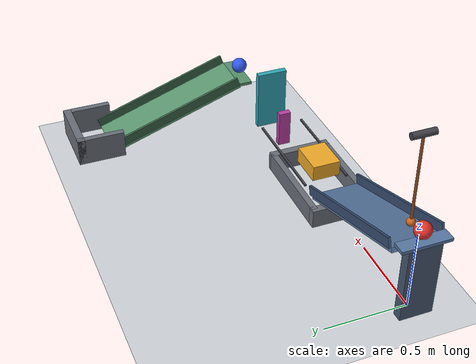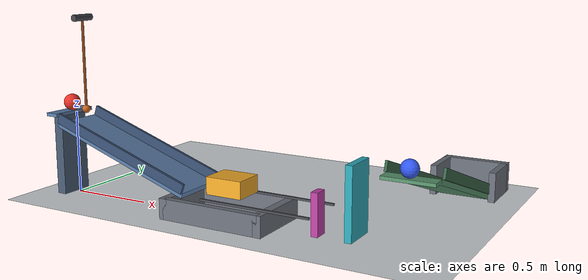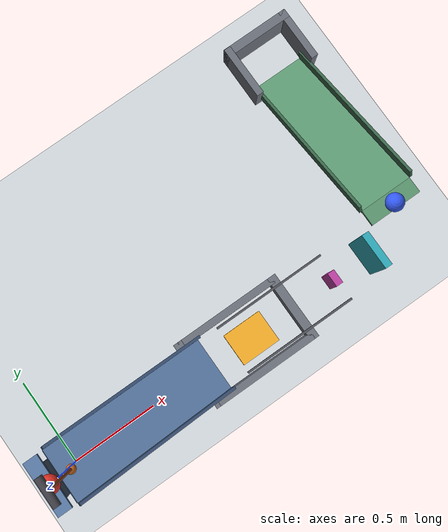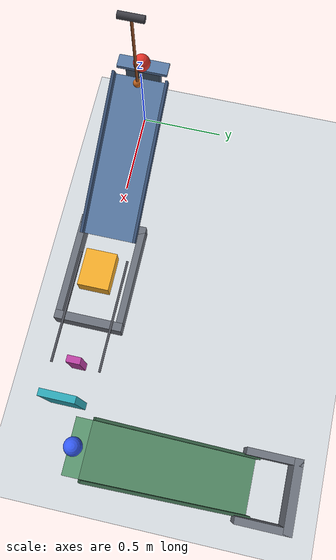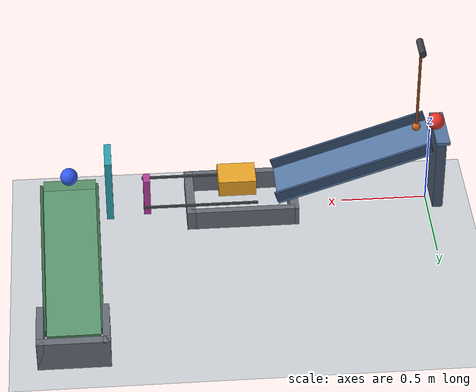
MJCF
<mujoco model="pendulum_ramp_cart_domino_flap">
  <compiler angle="degree" autolimits="true" inertiafromgeom="true"/>
  <option timestep="0.002" gravity="0 0 -9.81" integrator="implicitfast" cone="elliptic" iterations="100" tolerance="1e-10"/>
  <statistic center="1.0 0.35 0.45" extent="2.2"/>

  <visual>
    <headlight ambient="0.35 0.35 0.35" diffuse="0.65 0.65 0.65" specular="0.2 0.2 0.2"/>
    <rgba haze="0.85 0.90 0.95 1"/>
  </visual>

  <worldbody>
    <light name="key_light" pos="0.5 -2 4" dir="0.1 0.3 -1" diffuse="0.8 0.8 0.8"/>
    <camera name="overview" pos="1.0 -4.0 2.2" xyaxes="1 0 0 0 0.371391 0.928477" fovy="48"/>

    <geom name="floor" type="plane" pos="0 0 0" size="5 5 0.1" friction="0.68 0.005 0.0001" condim="6" solref="0.008 0.6901" solimp="0.999 0.999 0.001 0.5 2" rgba="0.83 0.85 0.87 1"/>

    <!-- Ramp1's inclined deck is 0.95 m by 0.30 m at 19 degrees. -->
    <!-- Its inclined upper surface ends at x=0.898242647, z=0.15. -->
    <!-- A level starting shelf keeps ball1 still until pendulum contact. -->
    <body name="ramp1" pos="0 0 0">
      <geom name="ramp1_deck" type="box" pos="0.444237801 0 0.290462095" quat="0.986285602 0 0.165047606 0" size="0.475 0.15 0.015" friction="0.68 0.005 0.0001" condim="6" solref="0.008 0.6901" solimp="0.999 0.999 0.001 0.5 2" rgba="0.35 0.48 0.65 1"/>
      <geom name="ramp1_left_rail" type="box" pos="0.458888368 -0.158 0.333010431" quat="0.986285602 0 0.165047606 0" size="0.475 0.008 0.03" friction="0.68 0.005 0.0001" condim="6" solref="0.008 0.6901" solimp="0.999 0.999 0.001 0.5 2" rgba="0.22 0.31 0.45 1"/>
      <geom name="ramp1_right_rail" type="box" pos="0.458888368 0.158 0.333010431" quat="0.986285602 0 0.165047606 0" size="0.475 0.008 0.03" friction="0.68 0.005 0.0001" condim="6" solref="0.008 0.6901" solimp="0.999 0.999 0.001 0.5 2" rgba="0.22 0.31 0.45 1"/>
      <geom name="ramp1_start_shelf" type="box" pos="-0.06 0 0.499289748" size="0.04 0.15 0.01" friction="0.68 0.005 0.0001" condim="6" solref="0.008 0.6901" solimp="0.999 0.999 0.001 0.5 2" rgba="0.35 0.48 0.65 1"/>
      <geom name="ramp1_start_support" type="box" pos="-0.06 0 0.244644874" size="0.03 0.10 0.244644874" friction="0.68 0.005 0.0001" condim="6" solref="0.008 0.6901" solimp="0.999 0.999 0.001 0.5 2" rgba="0.28 0.35 0.44 1"/>
    </body>

    <!-- Ramp2 descends along +y. Its starting shelf sits outside flap1's y extent. -->
    <!-- This lets the flap strike the protruding ball without striking its shelf. -->
    <body name="ramp2" pos="0 0 0">
      <geom name="ramp2_deck" type="box" pos="2.103242647 0.644237801 0.165462095" quat="0.697409251 -0.116706284 0.116706284 0.697409251" size="0.475 0.15 0.015" friction="0.68 0.005 0.0001" condim="6" solref="0.008 0.6901" solimp="0.999 0.999 0.001 0.5 2" rgba="0.35 0.58 0.43 1"/>
      <geom name="ramp2_left_rail" type="box" pos="1.945242647 0.658888368 0.208010431" quat="0.697409251 -0.116706284 0.116706284 0.697409251" size="0.475 0.008 0.03" friction="0.68 0.005 0.0001" condim="6" solref="0.008 0.6901" solimp="0.999 0.999 0.001 0.5 2" rgba="0.22 0.39 0.28 1"/>
      <geom name="ramp2_right_rail" type="box" pos="2.261242647 0.658888368 0.208010431" quat="0.697409251 -0.116706284 0.116706284 0.697409251" size="0.475 0.008 0.03" friction="0.68 0.005 0.0001" condim="6" solref="0.008 0.6901" solimp="0.999 0.999 0.001 0.5 2" rgba="0.22 0.39 0.28 1"/>
      <geom name="ramp2_start_shelf" type="box" pos="2.103242647 0.155 0.324289748" size="0.15 0.045 0.01" friction="0.68 0.005 0.0001" condim="6" solref="0.008 0.6901" solimp="0.999 0.999 0.001 0.5 2" rgba="0.35 0.58 0.43 1"/>
    </body>

    <body name="pendulum1_mount" pos="0 0 0">
      <geom name="pendulum1_mount_axle" type="cylinder" fromto="0.078111079 -0.07 1.076120689 0.078111079 0.07 1.076120689" size="0.02" contype="0" conaffinity="0" rgba="0.25 0.25 0.28 1"/>
    </body>

    <!-- The rigid pendulum has a 0.55 m pivot-to-bob length and total mass 0.40 kg. -->
    <body name="pendulum1" pos="0.078111079 0 1.076120689">
      <joint name="pendulum1_hinge" type="hinge" axis="0 -1 0" range="-60 60" damping="0.04" frictionloss="0" solreflimit="0.004 1" solimplimit="0.999 0.999 0.001 0.5 2"/>
      <geom name="pendulum1_rod" type="capsule" fromto="0 0 0 0 0 -0.55" size="0.008" mass="0.08" friction="0.68 0.005 0.0001" condim="6" solref="0.008 0.6901" solimp="0.999 0.999 0.001 0.5 2" rgba="0.55 0.28 0.12 1"/>
      <geom name="pendulum1_bob" type="sphere" pos="0 0 -0.55" size="0.025" mass="0.32" friction="0.68 0.005 0.0001" condim="6" solref="0.008 0.6901" solimp="0.999 0.999 0.001 0.5 2" rgba="0.78 0.40 0.12 1"/>
    </body>

    <body name="ball1" pos="-0.035 0 0.559289748">
      <freejoint name="ball1_free"/>
      <geom name="ball1_sphere" type="sphere" size="0.05" mass="0.20" friction="0.68 0.005 0.0001" condim="6" solref="0.008 0.6901" solimp="0.999 0.999 0.001 0.5 2" rgba="0.90 0.20 0.16 1"/>
    </body>

    <!-- The ideal slide guide supports the cart without cart-floor rubbing. -->
    <!-- Its initial front face is 0.12 m beyond ramp1's low end. -->
    <body name="cart1" pos="1.128242647 0 0.20">
      <joint name="cart1_slide" type="slide" axis="1 0 0" range="0 0.445" damping="0.20" frictionloss="0" solreflimit="0.004 1" solimplimit="0.999 0.999 0.001 0.5 2"/>
      <geom name="cart1_box" type="box" size="0.11 0.09 0.05" mass="0.50" friction="0.68 0.005 0.0001" condim="6" solref="0.008 0.6901" solimp="0.999 0.999 0.001 0.5 2" rgba="0.95 0.67 0.16 1"/>
    </body>

    <body name="cart1_guide" pos="0 0 0">
      <geom name="cart1_guide_left" type="box" pos="1.348242647 -0.14 0.132" size="0.335 0.006 0.006" contype="0" conaffinity="0" rgba="0.30 0.31 0.34 1"/>
      <geom name="cart1_guide_right" type="box" pos="1.348242647 0.14 0.132" size="0.335 0.006 0.006" contype="0" conaffinity="0" rgba="0.30 0.31 0.34 1"/>
    </body>

    <!-- Domino thickness is 0.04 m along x; width is 0.08 m along y. -->
    <!-- Cart1 first touches its rear face at slide displacement 0.40 m. -->
    <body name="domino1" pos="1.658242647 0 0.12">
      <freejoint name="domino1_free"/>
      <geom name="domino1_box" type="box" size="0.02 0.04 0.12" mass="0.25" friction="0.68 0.005 0.0001" condim="6" solref="0.008 0.6901" solimp="0.999 0.999 0.001 0.5 2" rgba="0.74 0.25 0.64 1"/>
    </body>

    <!-- The upright flap rests at its lower angular limit until struck. -->
    <!-- Its initial near face is 0.18 m beyond the domino's forward face. -->
    <!-- Once tipped, gravity assists its clockwise fall to the 65-degree stop. -->
    <body name="flap1" pos="1.878242647 0 0.025">
      <joint name="flap1_hinge" type="hinge" axis="0 1 0" range="0 65" damping="0.04" frictionloss="0" solreflimit="0.004 1" solimplimit="0.999 0.999 0.001 0.5 2"/>
      <geom name="flap1_panel" type="box" pos="0 0 0.20" size="0.02 0.10 0.20" mass="0.30" friction="0.68 0.005 0.0001" condim="6" solref="0.008 0.6901" solimp="0.999 0.999 0.001 0.5 2" rgba="0.18 0.66 0.72 1"/>
    </body>

    <body name="ball2" pos="2.103242647 0.14 0.384289748">
      <freejoint name="ball2_free"/>
      <geom name="ball2_sphere" type="sphere" size="0.05" mass="0.20" friction="0.68 0.005 0.0001" condim="6" solref="0.008 0.6901" solimp="0.999 0.999 0.001 0.5 2" rgba="0.20 0.35 0.95 1"/>
    </body>

    <!-- Low catcher walls clear the elevated cart and retain ball1 on the floor. -->
    <body name="ball1_catcher" pos="0 0 0">
      <geom name="ball1_catcher_end" type="box" pos="1.405 0 0.06" size="0.025 0.20 0.06" friction="0.68 0.005 0.0001" condim="6" solref="0.008 0.6901" solimp="0.999 0.999 0.001 0.5 2" rgba="0.42 0.44 0.48 1"/>
      <geom name="ball1_catcher_back" type="box" pos="0.80 0 0.06" size="0.025 0.20 0.06" friction="0.68 0.005 0.0001" condim="6" solref="0.008 0.6901" solimp="0.999 0.999 0.001 0.5 2" rgba="0.42 0.44 0.48 1"/>
      <geom name="ball1_catcher_left" type="box" pos="1.1025 -0.18 0.06" size="0.3025 0.02 0.06" friction="0.68 0.005 0.0001" condim="6" solref="0.008 0.6901" solimp="0.999 0.999 0.001 0.5 2" rgba="0.42 0.44 0.48 1"/>
      <geom name="ball1_catcher_right" type="box" pos="1.1025 0.18 0.06" size="0.3025 0.02 0.06" friction="0.68 0.005 0.0001" condim="6" solref="0.008 0.6901" solimp="0.999 0.999 0.001 0.5 2" rgba="0.42 0.44 0.48 1"/>
    </body>

    <body name="ball2_catcher" pos="0 0 0">
      <geom name="ball2_catcher_end" type="box" pos="2.103242647 1.31 0.09" size="0.20 0.025 0.09" friction="0.68 0.005 0.0001" condim="6" solref="0.008 0.6901" solimp="0.999 0.999 0.001 0.5 2" rgba="0.42 0.44 0.48 1"/>
      <geom name="ball2_catcher_left" type="box" pos="1.923242647 1.18 0.09" size="0.02 0.155 0.09" friction="0.68 0.005 0.0001" condim="6" solref="0.008 0.6901" solimp="0.999 0.999 0.001 0.5 2" rgba="0.42 0.44 0.48 1"/>
      <geom name="ball2_catcher_right" type="box" pos="2.283242647 1.18 0.09" size="0.02 0.155 0.09" friction="0.68 0.005 0.0001" condim="6" solref="0.008 0.6901" solimp="0.999 0.999 0.001 0.5 2" rgba="0.42 0.44 0.48 1"/>
    </body>
  </worldbody>

  <!-- qpos order: pendulum1, ball1, cart1, domino1, flap1, ball2. -->
  <!-- The pendulum starts 55 degrees left of downward vertical; all velocities are zero. -->
  <keyframe>
    <key name="start" time="0" qpos="-0.959931089 -0.035 0 0.559289748 1 0 0 0 0 1.658242647 0 0.12 1 0 0 0 0 2.103242647 0.14 0.384289748 1 0 0 0" qvel="0 0 0 0 0 0 0 0 0 0 0 0 0 0 0 0 0 0 0 0 0"/>
  </keyframe>
</mujoco>
